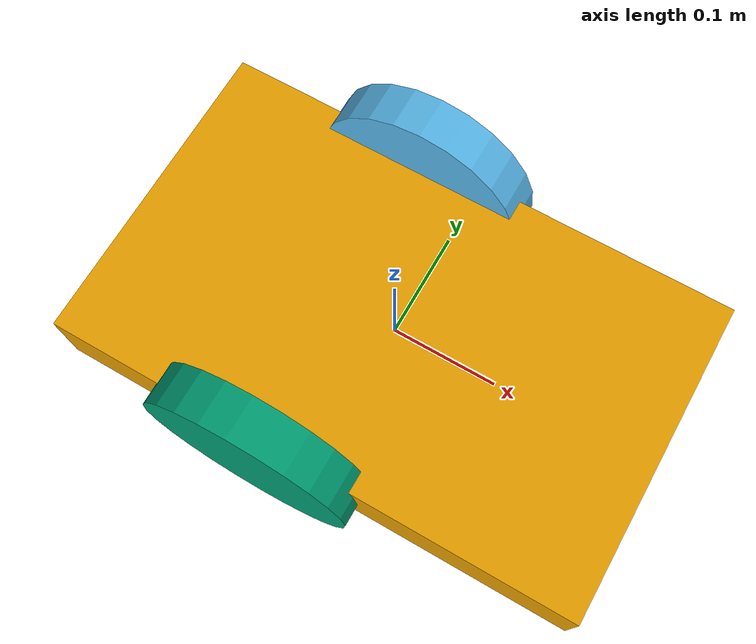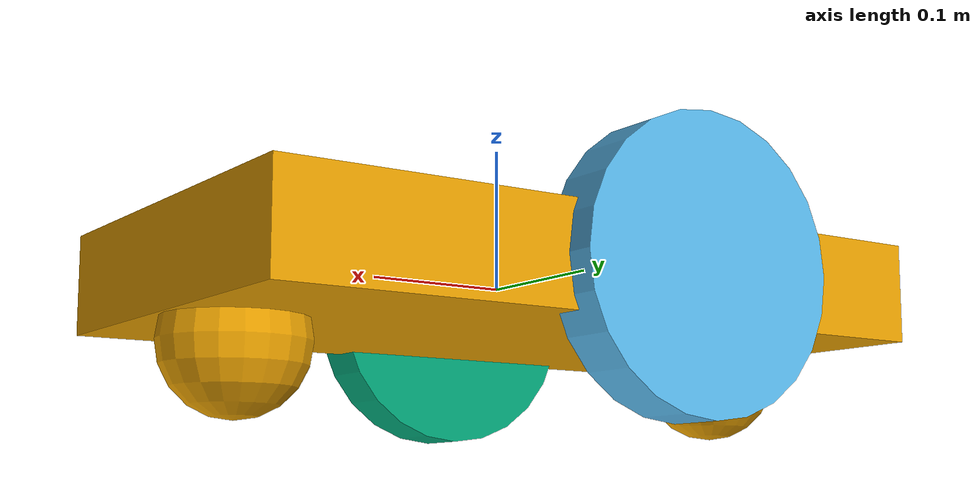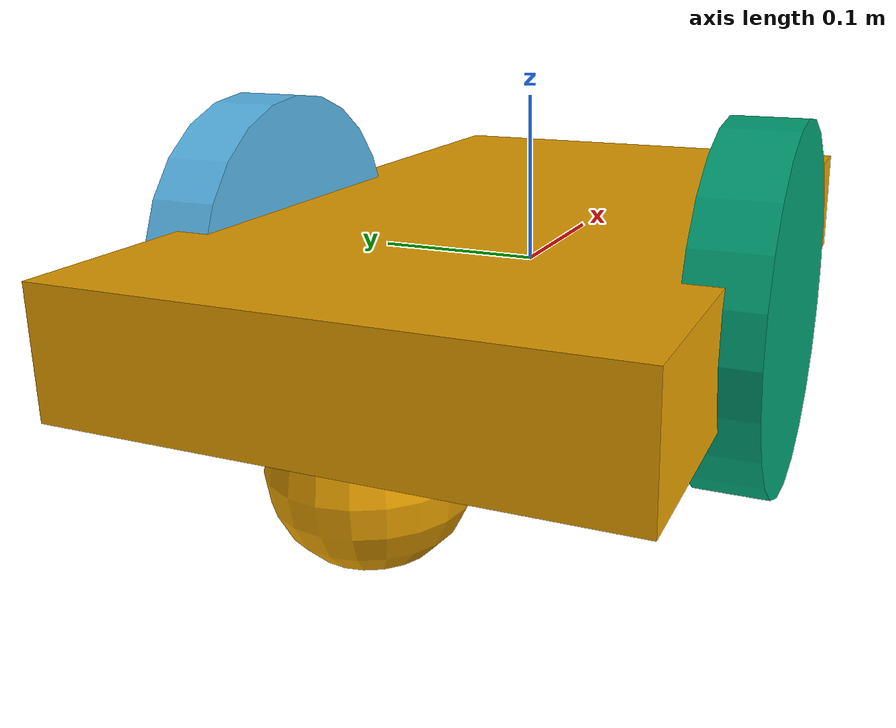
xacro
<?xml version="1.0" ?>
    <robot name="s2w" xml:xacro="hhtp://www.ros.org/wiki/xacro">
        <link name="link_chassis">
        <pose>
            W0 0 0.1 0 0 0
        </pose>
        <inertial>
            <mass value="5"/>
            <origin rpy="0 0 0" xyz="0 0 0.1"/>
            <inertia ixx="0.0395" ixy="0" ixz="0" iyy="0.1062" iyz="0" izz="0.1062"/>
        </inertial>
            <collision name="collision_chassis">
                <geometry>
                    <box size="0.5 0.3 0.07" />
                </geometry>
        </collision>
        <visual>
            <geometry>
                <box size="0.5 0.3 0.07"/>
            </geometry>
        </visual>
            <collision
                name="caster_front_collision">
                <origin rpy="0 0 0" xyz="0.2 0 -0.05"/>
                    <geometry>
                        <sphere radius="0.05"/>
                    </geometry>
                    <surface>
                        <friction>
                            <ode>
                                <mu>0</mu>
                                <mu2>0</mu2>
                                <slip1>1.0</slip1>
                                <slip2>1.0</slip2>
                            </ode>
                        </friction>
                    </surface>
                </collision>
                    <visual name="caster_front_visual">
                        <origin rpy="0 0 0" xyz="0.2 0 -0.05"/>
                        <geometry>
                            <sphere radius="0.05"/>
                        </geometry>
                    </visual>

            <collision
                name="caster_rear_collision">
                <origin rpy="0 0 0" xyz="-0.2 0 -0.05"/>
                    <geometry>
                        <sphere radius="0.05"/>
                    </geometry>
                    <surface>
                        <friction>
                            <ode>
                                <mu>0</mu>
                                <mu2>0</mu2>
                                <slip1>1.0</slip1>
                                <slip2>1.0</slip2>
                            </ode>
                        </friction>
                    </surface>
                </collision>
                    <visual name="caster_rear_visual">
                        <origin rpy="0 0 0" xyz="-0.2 0 -0.05"/>
                        <geometry>
                            <sphere radius="0.05"/>
                        </geometry>
                    </visual>
        </link>

        <link name="link_right_wheel">
            <inertial>
                <mass value="0.2"/>
                <origin rpy="0 1.5707 1.5707" xyz="0 0 0"/>
                <inertia ixx="0.00052666" ixy="0" ixz="0" iyy="0.00052666" iyz="0" izz="0.001"/>
            </inertial>
            <collision name="link_right_wheel_collision">
                <origin rpy="0 1.5707 1.5707" xyz="0 0 0"/>
                <geometry>
                    <cylinder length="0.04" radius="0.1"/>
                </geometry>
            </collision>
            <visual name="link_right_wheel_visual">
                <origin rpy="0 1.5707 1.5707" xyz="0 0 0"/>
                <geometry>
                    <cylinder length="0.04" radius="0.1"/>
                </geometry>
        </visual>
        </link>
        <joint name="joint_right_wheel" type="continuous">
            <origin rpy="0 0 0" xyz="-0.05 0.15 0"/>
            <child link="link_right_wheel"/>
            <parent link="link_chassis"/>
            <axis rpy="0 0 0" xyz="0 1 0"/>
            <limit effort="1000" velocity="100"/>
            <joint_properties damping="1.0" friction="1.0"/>
        </joint>

        <link name="link_left_wheel">
            <inertial>
                <mass value="0.2"/>
                <origin rpy="0 1.5707 1.5707" xyz="0 0 0"/>
                <inertia ixx="0.00052666" ixy="0" ixz="0" iyy="0.00052666" iyz="0" izz="0.001"/>
            </inertial>
            <collision name="link_left_wheel_collision">
                <origin rpy="0 1.5707 1.5707" xyz="0 0 0"/>
                <geometry>
                    <cylinder length="0.04" radius="0.1"/>
                </geometry>
            </collision>
            <visual name="link_left_wheel_visual">
                <origin rpy="0 1.5707 1.5707" xyz="0 0 0"/>
                <geometry>
                    <cylinder length="0.04" radius="0.1"/>
                </geometry>
        </visual>
        </link>
        <joint name="joint_left_wheel" type="continuous">
            <origin rpy="0 0 0" xyz="-0.05 -0.15 0"/>
            <child link="link_left_wheel"/>
            <parent link="link_chassis"/>
            <axis rpy="0 0 0" xyz="0 1 0"/>
            <limit effort="1000" velocity="100"/>
            <joint_properties damping="1.0" friction="1.0"/>
        </joint>

        <gazebo>
            <plugin filename="libgazebo_ros_diff_drive.so" name="differential_drive_controller">
                <legacyMode>false</legacyMode>
                <alwaysOn>true</alwaysOn>
                <updateRate>20</updateRate>
                <leftJoint>joint_left_wheel</leftJoint>
                <rightJoint>joint_right_wheel</rightJoint>
                <wheelSeparation>0.2</wheelSeparation>
                <wheelDiameter>0.2</wheelDiameter>
                <torque>0.1</torque>
                <commandTopic>cmd_vel</commandTopic>
                <odometryTopic>odom</odometryTopic>
                <odometryFrame>odom</odometryFrame>
                <robotBaseFrame>link_chassis</robotBaseFrame>
            </plugin>
        </gazebo>
    </robot>
